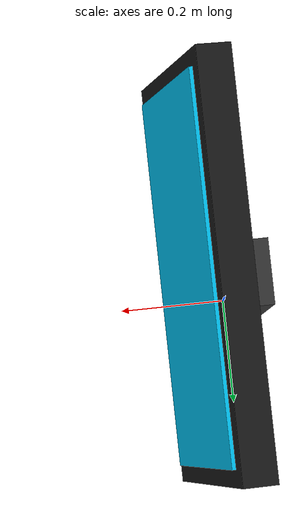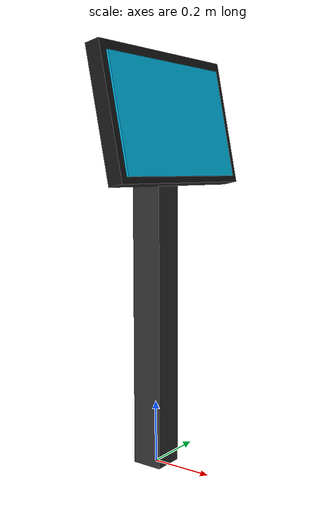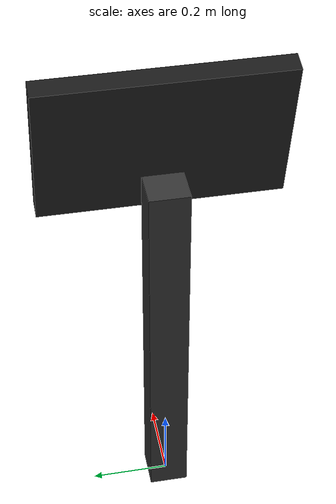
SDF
<?xml version="1.0" ?>
<sdf version="1.8">
  <model name="kitchen_monitor">
    <static>true</static>
    <link name="link">
      <!-- Stand -->
      <visual name="stand">
        <pose>0 0 0.5 0 0 0</pose>
        <geometry><box><size>0.1 0.1 1.0</size></box></geometry>
        <material><ambient>0.2 0.2 0.2 1</ambient><diffuse>0.2 0.2 0.2 1</diffuse></material>
      </visual>
      <!-- Screen -->
      <visual name="screen_back">
        <pose>0.05 0 1.1 0 -0.2 0</pose>
        <geometry><box><size>0.05 0.6 0.4</size></box></geometry>
        <material><ambient>0.1 0.1 0.1 1</ambient><diffuse>0.1 0.1 0.1 1</diffuse></material>
      </visual>
      <visual name="screen_display">
        <pose>0.076 0 1.1 0 -0.2 0</pose>
        <geometry><box><size>0.01 0.55 0.35</size></box></geometry>
        <material>
          <ambient>0 0.8 1 1</ambient>
          <diffuse>0 0.8 1 1</diffuse>
          <emissive>0 0.4 0.5 1</emissive>
        </material>
      </visual>
    </link>
  </model>
</sdf>
